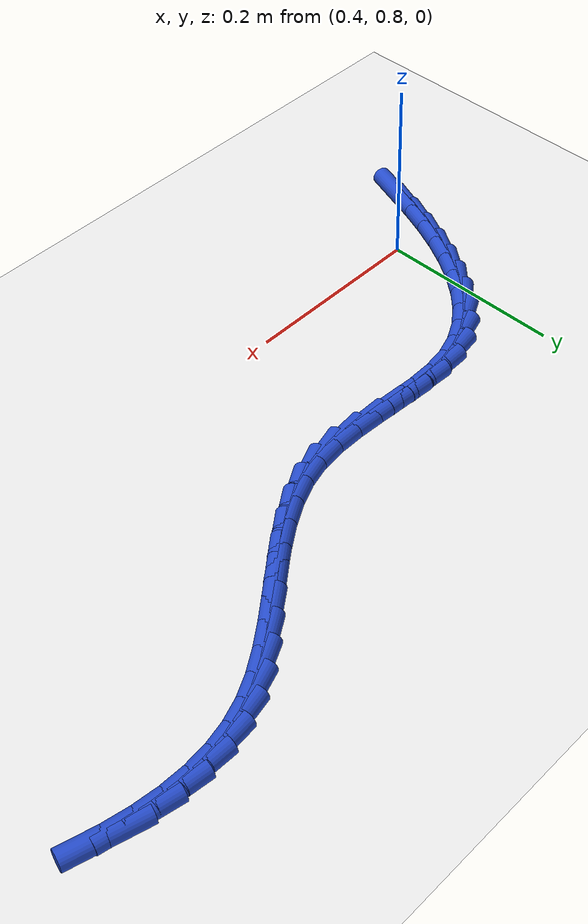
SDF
<sdf version="1.6">
 <world name="default">
  <model name="ground_plane">
   <static>1</static>
   <link name="link">
    <collision name="collision">
     <geometry><plane><normal>0 0 1</normal><size>100 100</size></plane></geometry>
     <surface><friction><ode><mu>100</mu><mu2>50</mu2></ode></friction></surface>
    </collision>
    <visual name="visual">
     <cast_shadows>0</cast_shadows>
     <geometry><plane><normal>0 0 1</normal><size>100 100</size></plane></geometry>
     <material>
      <script><uri>file://media/materials/scripts/gazebo.material</uri><name>Gazebo/WhiteGlow</name></script>
     </material>
    </visual>
   </link>
  </model>
  <model name="line">
   <link name="link_31">
    <pose>0.336224428931923 0.745587819471371 0.01 0 1.57 1.2456978939927081</pose>
    <collision name="collision">
     <geometry><cylinder><radius>0.01</radius><length>0.08</length></cylinder></geometry>
    </collision>
    <visual name="visual">
     <material>
      <script><name>Gazebo/Blue</name><uri>file://media/materials/scripts/gazebo.material</uri></script>
     </material>
     <geometry><cylinder><radius>0.01</radius><length>0.08</length></cylinder></geometry>
    </visual>
   </link>
   <link name="link_32">
    <pose>0.3460359377107962 0.7746971335228588 0.01 0 1.57 1.1978583400434655</pose>
    <collision name="collision">
     <geometry><cylinder><radius>0.01</radius><length>0.08</length></cylinder></geometry>
    </collision>
    <visual name="visual">
     <material>
      <script><name>Gazebo/Blue</name><uri>file://media/materials/scripts/gazebo.material</uri></script>
     </material>
     <geometry><cylinder><radius>0.01</radius><length>0.08</length></cylinder></geometry>
    </visual>
   </link>
   <link name="link_33">
    <pose>0.35714552602797056 0.8030924652686364 0.01 0 1.57 1.142029988332654</pose>
    <collision name="collision">
     <geometry><cylinder><radius>0.01</radius><length>0.08</length></cylinder></geometry>
    </collision>
    <visual name="visual">
     <material>
      <script><name>Gazebo/Blue</name><uri>file://media/materials/scripts/gazebo.material</uri></script>
     </material>
     <geometry><cylinder><radius>0.01</radius><length>0.08</length></cylinder></geometry>
    </visual>
   </link>
   <link name="link_34">
    <pose>0.36960984533573404 0.8303590066455696 0.01 0 1.57 1.0761052453301645</pose>
    <collision name="collision">
     <geometry><cylinder><radius>0.01</radius><length>0.08</length></cylinder></geometry>
    </collision>
    <visual name="visual">
     <material>
      <script><name>Gazebo/Blue</name><uri>file://media/materials/scripts/gazebo.material</uri></script>
     </material>
     <geometry><cylinder><radius>0.01</radius><length>0.08</length></cylinder></geometry>
    </visual>
   </link>
   <link name="link_35">
    <pose>0.3834855470863747 0.8560819495905233 0.01 0 1.57 0.9974803519455353</pose>
    <collision name="collision">
     <geometry><cylinder><radius>0.01</radius><length>0.08</length></cylinder></geometry>
    </collision>
    <visual name="visual">
     <material>
      <script><name>Gazebo/Blue</name><uri>file://media/materials/scripts/gazebo.material</uri></script>
     </material>
     <geometry><cylinder><radius>0.01</radius><length>0.08</length></cylinder></geometry>
    </visual>
   </link>
   <link name="link_36">
    <pose>0.3988292827321809 0.879846486040364 0.01 0 1.57 0.9030677132607141</pose>
    <collision name="collision">
     <geometry><cylinder><radius>0.01</radius><length>0.08</length></cylinder></geometry>
    </collision>
    <visual name="visual">
     <material>
      <script><name>Gazebo/Blue</name><uri>file://media/materials/scripts/gazebo.material</uri></script>
     </material>
     <geometry><cylinder><radius>0.01</radius><length>0.08</length></cylinder></geometry>
    </visual>
   </link>
   <link name="link_37">
    <pose>0.4156977037254406 0.9012378079319568 0.01 0 1.57 0.7895419671899593</pose>
    <collision name="collision">
     <geometry><cylinder><radius>0.01</radius><length>0.08</length></cylinder></geometry>
    </collision>
    <visual name="visual">
     <material>
      <script><name>Gazebo/Blue</name><uri>file://media/materials/scripts/gazebo.material</uri></script>
     </material>
     <geometry><cylinder><radius>0.01</radius><length>0.08</length></cylinder></geometry>
    </visual>
   </link>
   <link name="link_38">
    <pose>0.43414746151844197 0.9198411072021677 0.01 0 1.57 0.6540784379596216</pose>
    <collision name="collision">
     <geometry><cylinder><radius>0.01</radius><length>0.08</length></cylinder></geometry>
    </collision>
    <visual name="visual">
     <material>
      <script><name>Gazebo/Blue</name><uri>file://media/materials/scripts/gazebo.material</uri></script>
     </material>
     <geometry><cylinder><radius>0.01</radius><length>0.08</length></cylinder></geometry>
    </visual>
   </link>
   <link name="link_39">
    <pose>0.4542352075634731 0.9352415757878618 0.01 0 1.57 0.4958560009905526</pose>
    <collision name="collision">
     <geometry><cylinder><radius>0.01</radius><length>0.08</length></cylinder></geometry>
    </collision>
    <visual name="visual">
     <material>
      <script><name>Gazebo/Blue</name><uri>file://media/materials/scripts/gazebo.material</uri></script>
     </material>
     <geometry><cylinder><radius>0.01</radius><length>0.08</length></cylinder></geometry>
    </visual>
   </link>
   <link name="link_40">
    <pose>0.476017593312822 0.9470244056259052 0.01 0 1.57 0.31815796675706753</pose>
    <collision name="collision">
     <geometry><cylinder><radius>0.01</radius><length>0.08</length></cylinder></geometry>
    </collision>
    <visual name="visual">
     <material>
      <script><name>Gazebo/Blue</name><uri>file://media/materials/scripts/gazebo.material</uri></script>
     </material>
     <geometry><cylinder><radius>0.01</radius><length>0.08</length></cylinder></geometry>
    </visual>
   </link>
   <link name="link_41">
    <pose>0.499551174423336 0.9547751041185908 0.01 0 1.57 0.14423825000075716</pose>
    <collision name="collision">
     <geometry><cylinder><radius>0.01</radius><length>0.08</length></cylinder></geometry>
    </collision>
    <visual name="visual">
     <material>
      <script><name>Gazebo/Blue</name><uri>file://media/materials/scripts/gazebo.material</uri></script>
     </material>
     <geometry><cylinder><radius>0.01</radius><length>0.08</length></cylinder></geometry>
    </visual>
   </link>
   <link name="link_42">
    <pose>0.5247829555773309 0.9584399426525169 0.01 0 1.57 0.021829071699389333</pose>
    <collision name="collision">
     <geometry><cylinder><radius>0.01</radius><length>0.08</length></cylinder></geometry>
    </collision>
    <visual name="visual">
     <material>
      <script><name>Gazebo/Blue</name><uri>file://media/materials/scripts/gazebo.material</uri></script>
     </material>
     <geometry><cylinder><radius>0.01</radius><length>0.08</length></cylinder></geometry>
    </visual>
   </link>
   <link name="link_43">
    <pose>0.5513397123114506 0.9590197440957087 0.01 0 1.57 -0.04778637897986153</pose>
    <collision name="collision">
     <geometry><cylinder><radius>0.01</radius><length>0.08</length></cylinder></geometry>
    </collision>
    <visual name="visual">
     <material>
      <script><name>Gazebo/Blue</name><uri>file://media/materials/scripts/gazebo.material</uri></script>
     </material>
     <geometry><cylinder><radius>0.01</radius><length>0.08</length></cylinder></geometry>
    </visual>
   </link>
   <link name="link_44">
    <pose>0.5787900191554317 0.9577069939392998 0.01 0 1.57 -0.07198721304770839</pose>
    <collision name="collision">
     <geometry><cylinder><radius>0.01</radius><length>0.08</length></cylinder></geometry>
    </collision>
    <visual name="visual">
     <material>
      <script><name>Gazebo/Blue</name><uri>file://media/materials/scripts/gazebo.material</uri></script>
     </material>
     <geometry><cylinder><radius>0.01</radius><length>0.08</length></cylinder></geometry>
    </visual>
   </link>
   <link name="link_45">
    <pose>0.6067024506390097 0.9556941776744233 0.01 0 1.57 -0.054356800121898474</pose>
    <collision name="collision">
     <geometry><cylinder><radius>0.01</radius><length>0.08</length></cylinder></geometry>
    </collision>
    <visual name="visual">
     <material>
      <script><name>Gazebo/Blue</name><uri>file://media/materials/scripts/gazebo.material</uri></script>
     </material>
     <geometry><cylinder><radius>0.01</radius><length>0.08</length></cylinder></geometry>
    </visual>
   </link>
   <link name="link_46">
    <pose>0.6346455812919212 0.9541737807922133 0.01 0 1.57 0.005972827688766767</pose>
    <collision name="collision">
     <geometry><cylinder><radius>0.01</radius><length>0.08</length></cylinder></geometry>
    </collision>
    <visual name="visual">
     <material>
      <script><name>Gazebo/Blue</name><uri>file://media/materials/scripts/gazebo.material</uri></script>
     </material>
     <geometry><cylinder><radius>0.01</radius><length>0.08</length></cylinder></geometry>
    </visual>
   </link>
   <link name="link_47">
    <pose>0.6621879856439024 0.9543382887838028 0.01 0 1.57 0.11339648721736466</pose>
    <collision name="collision">
     <geometry><cylinder><radius>0.01</radius><length>0.08</length></cylinder></geometry>
    </collision>
    <visual name="visual">
     <material>
      <script><name>Gazebo/Blue</name><uri>file://media/materials/scripts/gazebo.material</uri></script>
     </material>
     <geometry><cylinder><radius>0.01</radius><length>0.08</length></cylinder></geometry>
    </visual>
   </link>
   <link name="link_48">
    <pose>0.6888982382246888 0.9573801871403254 0.01 0 1.57 0.26552585125540934</pose>
    <collision name="collision">
     <geometry><cylinder><radius>0.01</radius><length>0.08</length></cylinder></geometry>
    </collision>
    <visual name="visual">
     <material>
      <script><name>Gazebo/Blue</name><uri>file://media/materials/scripts/gazebo.material</uri></script>
     </material>
     <geometry><cylinder><radius>0.01</radius><length>0.08</length></cylinder></geometry>
    </visual>
   </link>
   <link name="link_49">
    <pose>0.7144036866667239 0.9643163227979136 0.01 0 1.57 0.4104750478282897</pose>
    <collision name="collision">
     <geometry><cylinder><radius>0.01</radius><length>0.08</length></cylinder></geometry>
    </collision>
    <visual name="visual">
     <material>
      <script><name>Gazebo/Blue</name><uri>file://media/materials/scripts/gazebo.material</uri></script>
     </material>
     <geometry><cylinder><radius>0.01</radius><length>0.08</length></cylinder></geometry>
    </visual>
   </link>
   <link name="link_50">
    <pose>0.7387504907703724 0.9749119571781819 0.01 0 1.57 0.5222467683999191</pose>
    <collision name="collision">
     <geometry><cylinder><radius>0.01</radius><length>0.08</length></cylinder></geometry>
    </collision>
    <visual name="visual">
     <material>
      <script><name>Gazebo/Blue</name><uri>file://media/materials/scripts/gazebo.material</uri></script>
     </material>
     <geometry><cylinder><radius>0.01</radius><length>0.08</length></cylinder></geometry>
    </visual>
   </link>
   <link name="link_51">
    <pose>0.7621666036343023 0.9883890774709587 0.01 0 1.57 0.6011634717574081</pose>
    <collision name="collision">
     <geometry><cylinder><radius>0.01</radius><length>0.08</length></cylinder></geometry>
    </collision>
    <visual name="visual">
     <material>
      <script><name>Gazebo/Blue</name><uri>file://media/materials/scripts/gazebo.material</uri></script>
     </material>
     <geometry><cylinder><radius>0.01</radius><length>0.08</length></cylinder></geometry>
    </visual>
   </link>
   <link name="link_52">
    <pose>0.7848807163912173 1.003967465312415 0.01 0 1.57 0.6497685850245833</pose>
    <collision name="collision">
     <geometry><cylinder><radius>0.01</radius><length>0.08</length></cylinder></geometry>
    </collision>
    <visual name="visual">
     <material>
      <script><name>Gazebo/Blue</name><uri>file://media/materials/scripts/gazebo.material</uri></script>
     </material>
     <geometry><cylinder><radius>0.01</radius><length>0.08</length></cylinder></geometry>
    </visual>
   </link>
   <link name="link_53">
    <pose>0.8071215201738202 1.0208669023387216 0.01 0 1.57 0.6703824752988023</pose>
    <collision name="collision">
     <geometry><cylinder><radius>0.01</radius><length>0.08</length></cylinder></geometry>
    </collision>
    <visual name="visual">
     <material>
      <script><name>Gazebo/Blue</name><uri>file://media/materials/scripts/gazebo.material</uri></script>
     </material>
     <geometry><cylinder><radius>0.01</radius><length>0.08</length></cylinder></geometry>
    </visual>
   </link>
   <link name="link_54">
    <pose>0.8291177061148156 1.0383071701860493 0.01 0 1.57 0.6640162065978206</pose>
    <collision name="collision">
     <geometry><cylinder><radius>0.01</radius><length>0.08</length></cylinder></geometry>
    </collision>
    <visual name="visual">
     <material>
      <script><name>Gazebo/Blue</name><uri>file://media/materials/scripts/gazebo.material</uri></script>
     </material>
     <geometry><cylinder><radius>0.01</radius><length>0.08</length></cylinder></geometry>
    </visual>
   </link>
   <link name="link_55">
    <pose>0.8510979653469058 1.0555080504905685 0.01 0 1.57 0.6300004108136756</pose>
    <collision name="collision">
     <geometry><cylinder><radius>0.01</radius><length>0.08</length></cylinder></geometry>
    </collision>
    <visual name="visual">
     <material>
      <script><name>Gazebo/Blue</name><uri>file://media/materials/scripts/gazebo.material</uri></script>
     </material>
     <geometry><cylinder><radius>0.01</radius><length>0.08</length></cylinder></geometry>
    </visual>
   </link>
   <link name="link_56">
    <pose>0.8732909890027951 1.0716893248884503 0.01 0 1.57 0.5660273629535294</pose>
    <collision name="collision">
     <geometry><cylinder><radius>0.01</radius><length>0.08</length></cylinder></geometry>
    </collision>
    <visual name="visual">
     <material>
      <script><name>Gazebo/Blue</name><uri>file://media/materials/scripts/gazebo.material</uri></script>
     </material>
     <geometry><cylinder><radius>0.01</radius><length>0.08</length></cylinder></geometry>
    </visual>
   </link>
   <link name="link_57">
    <pose>0.8959254682151868 1.0860707750158654 0.01 0 1.57 0.46875261034569793</pose>
    <collision name="collision">
     <geometry><cylinder><radius>0.01</radius><length>0.08</length></cylinder></geometry>
    </collision>
    <visual name="visual">
     <material>
      <script><name>Gazebo/Blue</name><uri>file://media/materials/scripts/gazebo.material</uri></script>
     </material>
     <geometry><cylinder><radius>0.01</radius><length>0.08</length></cylinder></geometry>
    </visual>
   </link>
   <link name="link_58">
    <pose>0.9192300941167846 1.0978721825089846 0.01 0 1.57 0.3392665636153728</pose>
    <collision name="collision">
     <geometry><cylinder><radius>0.01</radius><length>0.08</length></cylinder></geometry>
    </collision>
    <visual name="visual">
     <material>
      <script><name>Gazebo/Blue</name><uri>file://media/materials/scripts/gazebo.material</uri></script>
     </material>
     <geometry><cylinder><radius>0.01</radius><length>0.08</length></cylinder></geometry>
    </visual>
   </link>
   <link name="link_59">
    <pose>0.9434034261198739 1.1064032385717384 0.01 0 1.57 0.20520890322017646</pose>
    <collision name="collision">
     <geometry><cylinder><radius>0.01</radius><length>0.08</length></cylinder></geometry>
    </collision>
    <visual name="visual">
     <material>
      <script><name>Gazebo/Blue</name><uri>file://media/materials/scripts/gazebo.material</uri></script>
     </material>
     <geometry><cylinder><radius>0.01</radius><length>0.08</length></cylinder></geometry>
    </visual>
   </link>
   <link name="link_60">
    <pose>0.9684300054919652 1.1116122397921055 0.01 0 1.57 0.08175382094094812</pose>
    <collision name="collision">
     <geometry><cylinder><radius>0.01</radius><length>0.08</length></cylinder></geometry>
    </collision>
    <visual name="visual">
     <material>
      <script><name>Gazebo/Blue</name><uri>file://media/materials/scripts/gazebo.material</uri></script>
     </material>
     <geometry><cylinder><radius>0.01</radius><length>0.08</length></cylinder></geometry>
    </visual>
   </link>
   <link name="link_61">
    <pose>0.9942017420305705 1.1137238843479162 0.01 0 1.57 -0.02876723976940855</pose>
    <collision name="collision">
     <geometry><cylinder><radius>0.01</radius><length>0.08</length></cylinder></geometry>
    </collision>
    <visual name="visual">
     <material>
      <script><name>Gazebo/Blue</name><uri>file://media/materials/scripts/gazebo.material</uri></script>
     </material>
     <geometry><cylinder><radius>0.01</radius><length>0.08</length></cylinder></geometry>
    </visual>
   </link>
   <link name="link_62">
    <pose>1.0206101746797078 1.1129639770009223 0.01 0 1.57 -0.12576463096252255</pose>
    <collision name="collision">
     <geometry><cylinder><radius>0.01</radius><length>0.08</length></cylinder></geometry>
    </collision>
    <visual name="visual">
     <material>
      <script><name>Gazebo/Blue</name><uri>file://media/materials/scripts/gazebo.material</uri></script>
     </material>
     <geometry><cylinder><radius>0.01</radius><length>0.08</length></cylinder></geometry>
    </visual>
   </link>
   <link name="link_63">
    <pose>1.0475468423833965 1.1095583225128758 0.01 0 1.57 -0.20981740107546082</pose>
    <collision name="collision">
     <geometry><cylinder><radius>0.01</radius><length>0.08</length></cylinder></geometry>
    </collision>
    <visual name="visual">
     <material>
      <script><name>Gazebo/Blue</name><uri>file://media/materials/scripts/gazebo.material</uri></script>
     </material>
     <geometry><cylinder><radius>0.01</radius><length>0.08</length></cylinder></geometry>
    </visual>
   </link>
   <link name="link_64">
    <pose>1.0749032840856532 1.1037327256455274 0.01 0 1.57 -0.28212691487153047</pose>
    <collision name="collision">
     <geometry><cylinder><radius>0.01</radius><length>0.08</length></cylinder></geometry>
    </collision>
    <visual name="visual">
     <material>
      <script><name>Gazebo/Blue</name><uri>file://media/materials/scripts/gazebo.material</uri></script>
     </material>
     <geometry><cylinder><radius>0.01</radius><length>0.08</length></cylinder></geometry>
    </visual>
   </link>
  </model>
 </world>
</sdf>
